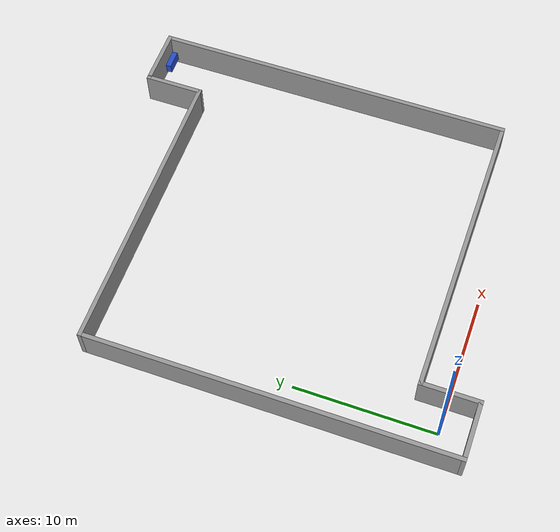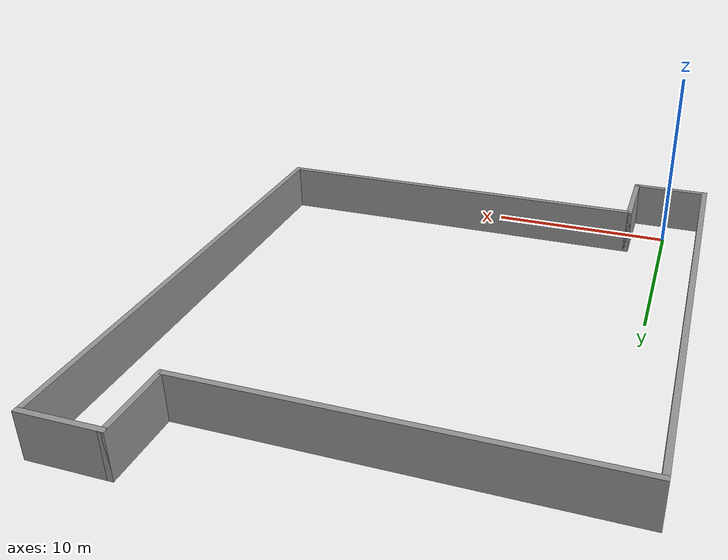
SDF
<sdf version="1.6">
 <world name="default">
  <model name="DelZona">
   <pose>10.5 13 0 0 -0 0</pose>
   <link name="Wall_10">
    <collision name="Wall_10_Collision">
     <geometry><box><size>4.3 0.3 2.5</size></box></geometry>
     <pose>0 0 1.25 0 -0 0</pose>
    </collision>
    <visual name="Wall_10_Visual">
     <pose>0 0 1.25 0 -0 0</pose>
     <geometry><box><size>4.3 0.3 2.5</size></box></geometry>
     <material>
      <script><uri>file://media/materials/scripts/gazebo.material</uri><name>Gazebo/Grey</name></script>
      <ambient>1 1 1 1</ambient>
     </material>
     <meta><layer>0</layer></meta>
    </visual>
    <pose>-8.5 -13 0 0 -0 1.5708</pose>
   </link>
   <link name="Wall_12">
    <collision name="Wall_12_Collision">
     <geometry><box><size>21 0.3 2.5</size></box></geometry>
     <pose>0 0 1.25 0 -0 0</pose>
    </collision>
    <visual name="Wall_12_Visual">
     <pose>0 0 1.25 0 -0 0</pose>
     <geometry><box><size>21 0.3 2.5</size></box></geometry>
     <material>
      <script><uri>file://media/materials/scripts/gazebo.material</uri><name>Gazebo/Grey</name></script>
      <ambient>1 1 1 1</ambient>
     </material>
     <meta><layer>0</layer></meta>
    </visual>
    <pose>1.85 -11 0 0 -0 0</pose>
   </link>
   <link name="Wall_16">
    <collision name="Wall_16_Collision">
     <geometry><box><size>26 0.3 2.5</size></box></geometry>
     <pose>0 0 1.25 0 -0 0</pose>
    </collision>
    <visual name="Wall_16_Visual">
     <pose>0 0 1.25 0 -0 0</pose>
     <geometry><box><size>26 0.3 2.5</size></box></geometry>
     <material>
      <script><uri>file://media/materials/scripts/gazebo.material</uri><name>Gazebo/Grey</name></script>
      <ambient>1 1 1 1</ambient>
     </material>
     <meta><layer>0</layer></meta>
    </visual>
    <pose>12.5 1.85 0 0 -0 1.5708</pose>
   </link>
   <link name="Wall_18">
    <collision name="Wall_18_Collision">
     <geometry><box><size>4.3 0.3 2.5</size></box></geometry>
     <pose>0 0 1.25 0 -0 0</pose>
    </collision>
    <visual name="Wall_18_Visual">
     <pose>0 0 1.25 0 -0 0</pose>
     <geometry><box><size>4.3 0.3 2.5</size></box></geometry>
     <material>
      <script><uri>file://media/materials/scripts/gazebo.material</uri><name>Gazebo/Grey</name></script>
      <ambient>1 1 1 1</ambient>
     </material>
     <meta><layer>0</layer></meta>
    </visual>
    <pose>8.5 13 0 0 -0 1.5708</pose>
   </link>
   <link name="Wall_20">
    <collision name="Wall_20_Collision">
     <geometry><box><size>4.3 0.3 2.5</size></box></geometry>
     <pose>0 0 1.25 0 -0 0</pose>
    </collision>
    <visual name="Wall_20_Visual">
     <pose>0 0 1.25 0 -0 0</pose>
     <geometry><box><size>4.3 0.3 2.5</size></box></geometry>
     <material>
      <script><uri>file://media/materials/scripts/gazebo.material</uri><name>Gazebo/Grey</name></script>
      <ambient>1 1 1 1</ambient>
     </material>
     <meta><layer>0</layer></meta>
    </visual>
    <pose>10.5 15 0 0 -0 0</pose>
   </link>
   <link name="Wall_22">
    <collision name="Wall_22_Collision">
     <geometry><box><size>21.3 0.3 2.5</size></box></geometry>
     <pose>0 0 1.25 0 -0 0</pose>
    </collision>
    <visual name="Wall_22_Visual">
     <pose>0 0 1.25 0 -0 0</pose>
     <geometry><box><size>21.3 0.3 2.5</size></box></geometry>
     <material>
      <script><uri>file://media/materials/scripts/gazebo.material</uri><name>Gazebo/Grey</name></script>
      <ambient>1 1 1 1</ambient>
     </material>
     <meta><layer>0</layer></meta>
    </visual>
    <pose>-2 11 0 0 -0 0</pose>
   </link>
   <link name="Wall_4">
    <collision name="Wall_4_Collision">
     <geometry><box><size>26 0.3 2.5</size></box></geometry>
     <pose>0 0 1.25 0 -0 0</pose>
    </collision>
    <visual name="Wall_4_Visual">
     <pose>0 0 1.25 0 -0 0</pose>
     <geometry><box><size>26 0.3 2.5</size></box></geometry>
     <material>
      <script><uri>file://media/materials/scripts/gazebo.material</uri><name>Gazebo/Grey</name></script>
      <ambient>1 1 1 1</ambient>
     </material>
     <meta><layer>0</layer></meta>
    </visual>
    <pose>-12.5 -2.15 0 0 -0 1.5708</pose>
   </link>
   <link name="Wall_8">
    <collision name="Wall_8_Collision">
     <geometry><box><size>4.3 0.3 2.5</size></box></geometry>
     <pose>0 0 1.25 0 -0 0</pose>
    </collision>
    <visual name="Wall_8_Visual">
     <pose>0 0 1.25 0 -0 0</pose>
     <geometry><box><size>4.3 0.3 2.5</size></box></geometry>
     <material>
      <script><uri>file://media/materials/scripts/gazebo.material</uri><name>Gazebo/Grey</name></script>
      <ambient>1 1 1 1</ambient>
     </material>
     <meta><layer>0</layer></meta>
    </visual>
    <pose>-10.5 -15 0 0 -0 0</pose>
   </link>
   <static>1</static>
  </model>
  <model name="unit_box_clone">
   <pose>22.1651 27.637 0.698047 0.036214 -0.036036 -1.57181</pose>
   <link name="link">
    <inertial>
     <mass>1</mass>
     <inertia>
      <ixx>0.166667</ixx>
      <ixy>0</ixy>
      <ixz>0</ixz>
      <iyy>0.166667</iyy>
      <iyz>0</iyz>
      <izz>0.166667</izz>
     </inertia>
    </inertial>
    <collision name="collision"><geometry><box><size>0.4 1.34407 0.719939</size></box></geometry></collision>
    <visual name="visual">
     <geometry><box><size>0.4 1.34407 0.719939</size></box></geometry>
     <material>
      <script><name>Gazebo/Blue</name><uri>file://media/materials/scripts/gazebo.material</uri></script>
     </material>
    </visual>
   </link>
  </model>
  <model name="unit_box_clone_clone">
   <pose>19.3559 27.086 0.455462 0.094883 0.023254 -3.13942</pose>
   <link name="link">
    <inertial>
     <mass>1</mass>
     <inertia>
      <ixx>0.166667</ixx>
      <ixy>0</ixy>
      <ixz>0</ixz>
      <iyy>0.166667</iyy>
      <iyz>0</iyz>
      <izz>0.166667</izz>
     </inertia>
    </inertial>
    <collision name="collision"><geometry><box><size>0.4 1.4846 0.508414</size></box></geometry></collision>
    <visual name="visual">
     <geometry><box><size>0.4 1.4846 0.508414</size></box></geometry>
     <material>
      <script><name>Gazebo/Blue</name><uri>file://media/materials/scripts/gazebo.material</uri></script>
     </material>
    </visual>
   </link>
  </model>
 </world>
</sdf>
